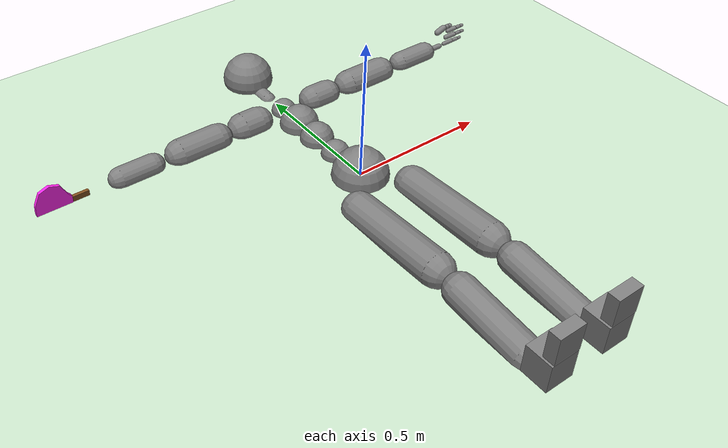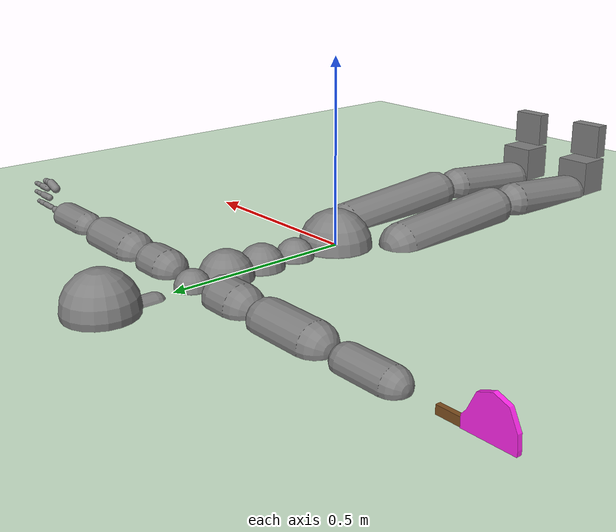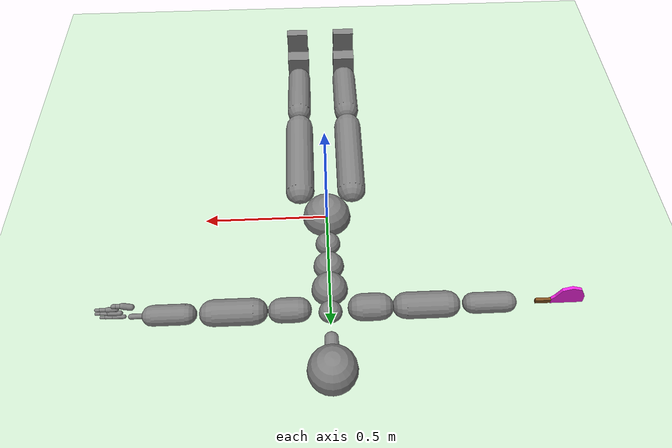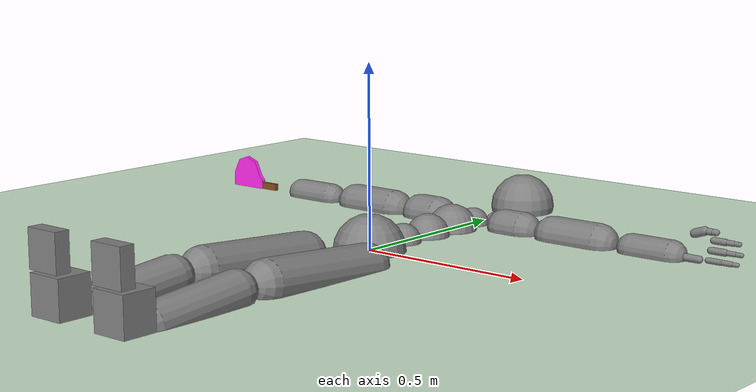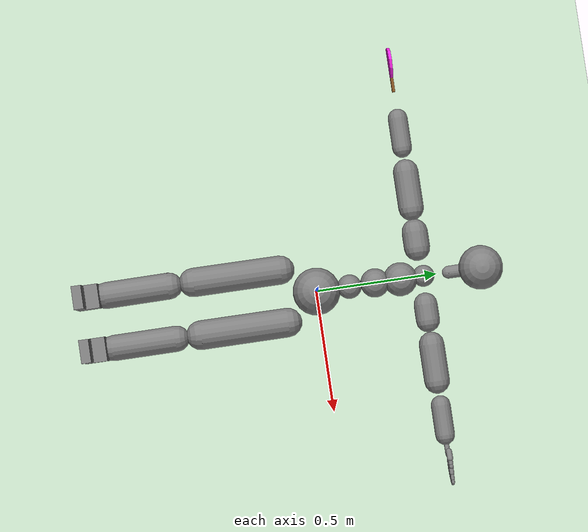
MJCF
<mujoco model="humanoid">
  <compiler coordinate="local"/>
  <statistic extent="2" center="0 0 1"/>
  <option timestep="0.00555"/>
  <default>
    <motor ctrlrange="-1 1" ctrllimited="true"/>
    <geom type="capsule" condim="1" friction="1.0 0.05 0.05" solimp=".9 .99 .003" solref=".015 1"/>
    <joint type="hinge" damping="0.1" stiffness="5" armature=".007" limited="true" solimplimit="0 .99 .01"/>
    <site size=".04" group="3"/>
    <default class="force-torque">
      <site type="box" size=".01 .01 .02" rgba="1 0 0 1"/>
    </default>
    <default class="touch">
      <site type="capsule" rgba="0 0 1 .3"/>
    </default>
  </default>
  <asset>
    <texture type="skybox" builtin="gradient" rgb1=".4 .5 .6" rgb2="0 0 0" width="100" height="100"/>
    <texture builtin="flat" height="1278" mark="cross" markrgb="1 1 1" name="texgeom" random="0.01" rgb1="0.8 0.6 0.4" rgb2="0.8 0.6 0.4" type="cube" width="127"/>
    <texture builtin="checker" height="100" name="texplane" rgb1="0 0 0" rgb2="0.8 0.8 0.8" type="2d" width="100"/>
    <material name="MatPlane" reflectance="0.5" shininess="1" specular="1" texrepeat="60 60" texture="texplane"/>
    <material name="geom" texture="texgeom" texuniform="true"/>
    <mesh name="R_Racket_Handle_Mesh" file="../obj/r_racket_handle.obj"/>
    <mesh name="R_Racket_Blade_Mesh" file="../obj/r_racket_blade.obj"/>
  </asset>
  <worldbody>
    <light cutoff="100" diffuse="1 1 1" dir="-0 0 -1.3" directional="true" exponent="1" pos="0 0 1.3" specular=".1 .1 .1"/>
    <geom conaffinity="1" condim="3" name="floor" pos="0 0 0" rgba="0.8 0.9 0.8 1" size="100 100 .2" type="plane" material="MatPlane"/>
    <body name="Pelvis" pos="0 0 0">
      <freejoint name="Pelvis"/>
      <geom type="sphere" contype="1" conaffinity="1" density="4629.6296296296305" size="0.0985" pos="0.0000 0.0000 0.0000"/>
      <body name="L_Hip" pos="0.109716 -0.0365719 0">
        <joint name="L_Hip_x" type="hinge" pos="0 0 0" axis="1 0 0" stiffness="500" damping="50" armature="0.02" range="-180.0000 180.0000"/>
        <joint name="L_Hip_y" type="hinge" pos="0 0 0" axis="0 1 0" stiffness="500" damping="50" armature="0.02" range="-180.0000 180.0000"/>
        <joint name="L_Hip_z" type="hinge" pos="0 0 0" axis="0 0 1" stiffness="500" damping="50" armature="0.02" range="-180.0000 180.0000"/>
        <geom type="capsule" contype="1" conaffinity="1" density="2040.816327" fromto="0 -0.1 0 -0 -0.461208 0.0256003" size="0.0605"/>
        <body name="L_Knee" pos="-0 -0.461208 0.0256003">
          <joint name="L_Knee_x" type="hinge" pos="0 0 0" axis="1 0 0" stiffness="500" damping="50" armature="0.02" range="-180.0000 180.0000"/>
          <joint name="L_Knee_y" type="hinge" pos="0 0 0" axis="0 1 0" stiffness="500" damping="50" armature="0.02" range="-180.0000 180.0000"/>
          <joint name="L_Knee_z" type="hinge" pos="0 0 0" axis="0 0 1" stiffness="500" damping="50" armature="0.02" range="-180.0000 180.0000"/>
          <geom type="capsule" contype="1" conaffinity="1" density="1234.567901" fromto="0 -0.1 0 -0 -0.364385 -0.0256003" size="0.0533"/>
          <body name="L_Ankle" pos="-0 -0.364385 -0.0256003">
            <joint name="L_Ankle_x" type="hinge" pos="0 0 0" axis="1 0 0" stiffness="400" damping="40" armature="0.02" range="-180.0000 180.0000"/>
            <joint name="L_Ankle_y" type="hinge" pos="0 0 0" axis="0 1 0" stiffness="400" damping="40" armature="0.02" range="-180.0000 180.0000"/>
            <joint name="L_Ankle_z" type="hinge" pos="0 0 0" axis="0 0 1" stiffness="400" damping="40" armature="0.02" range="-180.0000 180.0000"/>
            <geom density="" type="box" pos="0. -0.07 0.0142" size="0.0498 0.0464 0.0857" quat="1.0000 0.0000 0.0000 0.0000"/>
            <body name="L_Toe" pos="-0 -0.0986496 0.156582">
              <joint name="L_Toe_x" type="hinge" pos="0 0 0" axis="1 0 0" stiffness="200" damping="20" armature="0.02" range="-180.0000 180.0000"/>
              <joint name="L_Toe_y" type="hinge" pos="0 0 0" axis="0 1 0" stiffness="200" damping="20" armature="0.02" range="-180.0000 180.0000"/>
              <joint name="L_Toe_z" type="hinge" pos="0 0 0" axis="0 0 1" stiffness="200" damping="20" armature="0.02" range="-180.0000 180.0000"/>
              <geom density="" type="box" pos="0. 0. 0." size="0.0478 0.02 0.0495" quat="1.0000 0.0000 0.0000 0.0000"/>
            </body>
          </body>
        </body>
      </body>
      <body name="R_Hip" pos="-0.109716 -0.0365719 0">
        <joint name="R_Hip_x" type="hinge" pos="0 0 0" axis="1 0 0" stiffness="500" damping="50" armature="0.02" range="-180.0000 180.0000"/>
        <joint name="R_Hip_y" type="hinge" pos="0 0 0" axis="0 1 0" stiffness="500" damping="50" armature="0.02" range="-180.0000 180.0000"/>
        <joint name="R_Hip_z" type="hinge" pos="0 0 0" axis="0 0 1" stiffness="500" damping="50" armature="0.02" range="-180.0000 180.0000"/>
        <geom type="capsule" contype="1" conaffinity="1" density="2040.816327" fromto="0 -0.1 0 -0 -0.461208 0.0256003" size="0.0598"/>
        <body name="R_Knee" pos="-0 -0.461208 0.0256003">
          <joint name="R_Knee_x" type="hinge" pos="0 0 0" axis="1 0 0" stiffness="500" damping="50" armature="0.02" range="-180.0000 180.0000"/>
          <joint name="R_Knee_y" type="hinge" pos="0 0 0" axis="0 1 0" stiffness="500" damping="50" armature="0.02" range="-180.0000 180.0000"/>
          <joint name="R_Knee_z" type="hinge" pos="0 0 0" axis="0 0 1" stiffness="500" damping="50" armature="0.02" range="-180.0000 180.0000"/>
          <geom type="capsule" contype="1" conaffinity="1" density="1234.567901" fromto=" 0 -0.1 0 -0 -0.364385 -0.0256003" size="0.0551"/>
          <body name="R_Ankle" pos="-0 -0.364385 -0.0256003">
            <joint name="R_Ankle_x" type="hinge" pos="0 0 0" axis="1 0 0" stiffness="400" damping="40" armature="0.02" range="-180.0000 180.0000"/>
            <joint name="R_Ankle_y" type="hinge" pos="0 0 0" axis="0 1 0" stiffness="400" damping="40" armature="0.02" range="-180.0000 180.0000"/>
            <joint name="R_Ankle_z" type="hinge" pos="0 0 0" axis="0 0 1" stiffness="400" damping="40" armature="0.02" range="-180.0000 180.0000"/>
            <geom density="" type="box" pos="0. -0.07 0.0142" size="0.0498 0.0464 0.0857" quat="1.0000 0.0000 0.0000 0.0000"/>
            <body name="R_Toe" pos="-0 -0.0986496 0.156582">
              <joint name="R_Toe_x" type="hinge" pos="0 0 0" axis="1 0 0" stiffness="200" damping="20" armature="0.02" range="-180.0000 180.0000"/>
              <joint name="R_Toe_y" type="hinge" pos="0 0 0" axis="0 1 0" stiffness="200" damping="20" armature="0.02" range="-180.0000 180.0000"/>
              <joint name="R_Toe_z" type="hinge" pos="0 0 0" axis="0 0 1" stiffness="200" damping="20" armature="0.02" range="-180.0000 180.0000"/>
              <geom density="" type="box" pos="0. 0. 0." size="0.0478 0.02 0.0495" quat="1.0000 0.0000 0.0000 0.0000"/>
            </body>
          </body>
        </body>
      </body>
      <body name="Torso" pos="-0 0.0877726 -0.0279775">
        <joint name="Torso_x" type="hinge" pos="0 0 0" axis="1 0 0" stiffness="1000" damping="100" armature="0.02" range="-180.0000 180.0000"/>
        <joint name="Torso_y" type="hinge" pos="0 0 0" axis="0 1 0" stiffness="1000" damping="100" armature="0.02" range="-180.0000 180.0000"/>
        <joint name="Torso_z" type="hinge" pos="0 0 0" axis="0 0 1" stiffness="1000" damping="100" armature="0.02" range="-180.0000 180.0000"/>
        <geom type="sphere" contype="1" conaffinity="1" density="1000" size="0.05011" pos="0.0000 0.050000 0.0279775"/>
        <body name="Spine" pos="-0 0.106124 0">
          <joint name="Spine_x" type="hinge" pos="0 0 0" axis="1 0 0" stiffness="1000" damping="100" armature="0.02" range="-180.0000 180.0000"/>
          <joint name="Spine_y" type="hinge" pos="0 0 0" axis="0 1 0" stiffness="1000" damping="100" armature="0.02" range="-180.0000 180.0000"/>
          <joint name="Spine_z" type="hinge" pos="0 0 0" axis="0 0 1" stiffness="1000" damping="100" armature="0.02" range="-180.0000 180.0000"/>
          <geom type="sphere" contype="1" conaffinity="1" density="1000" size="0.06011" pos="0.0000 0.050000 0.0279775"/>
          <body name="Spine2" pos="-0 0.106124 0">
	    <joint name="Spine2_x" type="hinge" pos="0 0 0" axis="1 0 0" stiffness="1000" damping="100" armature="0.02" range="-180.0000 180.0000"/>
	    <joint name="Spine2_y" type="hinge" pos="0 0 0" axis="0 1 0" stiffness="1000" damping="100" armature="0.02" range="-180.0000 180.0000"/>
	    <joint name="Spine2_z" type="hinge" pos="0 0 0" axis="0 0 1" stiffness="1000" damping="100" armature="0.02" range="-180.0000 180.0000"/>
	    <geom type="sphere" contype="1" conaffinity="1" density="1000" size="0.07011" pos="0.0000 0.050000 0.0279775"/>
		  <body name="Chest" pos="-0 0.166951 0">
		    <joint name="Chest_x" type="hinge" pos="0 0 0" axis="1 0 0" stiffness="1000" damping="100" armature="0.02" range="-180.0000 180.0000"/>
		    <joint name="Chest_y" type="hinge" pos="0 0 0" axis="0 1 0" stiffness="1000" damping="100" armature="0.02" range="-180.0000 180.0000"/>
		    <joint name="Chest_z" type="hinge" pos="0 0 0" axis="0 0 1" stiffness="1000" damping="100" armature="0.02" range="-180.0000 180.0000"/>
		    <geom type="sphere" contype="1" conaffinity="1" density="1000" size="0.045" pos="0.0000 -0.020000 0.0279775"/>
		    <body name="Neck" pos="-0 0.084247 0.0146288">
		      <joint name="Neck_x" type="hinge" pos="0 0 0" axis="1 0 0" stiffness="100" damping="10" armature="0.02" range="-180.0000 180.0000"/>
		      <joint name="Neck_y" type="hinge" pos="0 0 0" axis="0 1 0" stiffness="100" damping="10" armature="0.02" range="-180.0000 180.0000"/>
		      <joint name="Neck_z" type="hinge" pos="0 0 0" axis="0 0 1" stiffness="100" damping="10" armature="0.02" range="-180.0000 180.0000"/>
		      <geom type="capsule" contype="1" conaffinity="1" density="1000" fromto="0 0 0 -0 0.0509716 0" size="0.0285"/>
		      <body name="Head" pos="-0 0.109716 0">
		        <joint name="Head_x" type="hinge" pos="0 0 0" axis="1 0 0" stiffness="100" damping="10" armature="0.02" range="-180.0000 180.0000"/>
		        <joint name="Head_y" type="hinge" pos="0 0 0" axis="0 1 0" stiffness="100" damping="10" armature="0.02" range="-180.0000 180.0000"/>
		        <joint name="Head_z" type="hinge" pos="0 0 0" axis="0 0 1" stiffness="100" damping="10" armature="0.02" range="-180.0000 180.0000"/>
		        <geom type="sphere" contype="1" conaffinity="1" density="1000" size="0.0920" pos="0.0000 0.024000 0.0279775"/>
		      </body>
		    </body>
		    <body name="L_Thorax" pos="0.018286 -0.0295385 0.0365719">
		      <joint name="L_Thorax_x" type="hinge" pos="0 0 0" axis="1 0 0" stiffness="400" damping="40" armature="0.02" range="-180.0000 180.0000"/>
		      <joint name="L_Thorax_y" type="hinge" pos="0 0 0" axis="0 1 0" stiffness="400" damping="40" armature="0.02" range="-180.0000 180.0000"/>
		      <joint name="L_Thorax_z" type="hinge" pos="0 0 0" axis="0 0 1" stiffness="400" damping="40" armature="0.02" range="-180.0000 180.0000"/>
		      <geom type="capsule" contype="1" conaffinity="1" density="1000" fromto="0.1 0 0 0.166499 0 0" size="0.0488"/>
		      <body name="L_Shoulder" pos="0.166499 0 0">
		        <joint name="L_Shoulder_x" type="hinge" pos="0 0 0" axis="1 0 0" stiffness="400" damping="40" armature="0.02" range="-180.0000 180.0000"/>
		        <joint name="L_Shoulder_y" type="hinge" pos="0 0 0" axis="0 1 0" stiffness="400" damping="40" armature="0.02" range="-180.0000 180.0000"/>
		        <joint name="L_Shoulder_z" type="hinge" pos="0 0 0" axis="0 0 1" stiffness="400" damping="40" armature="0.02" range="-180.0000 180.0000"/>
		        <geom type="capsule" contype="1" conaffinity="1" density="1000" fromto="0.1 0 0 0.252505 0 0" size="0.0522"/>
		        <body name="L_Elbow" pos="0.252505 0 0">
		          <joint name="L_Elbow_x" type="hinge" pos="0 0 0" axis="1 0 0" stiffness="300" damping="30" armature="0.02" range="-180.0000 180.0000"/>
		          <joint name="L_Elbow_y" type="hinge" pos="0 0 0" axis="0 1 0" stiffness="300" damping="30" armature="0.02" range="-180.0000 180.0000"/>
		          <joint name="L_Elbow_z" type="hinge" pos="0 0 0" axis="0 0 1" stiffness="300" damping="30" armature="0.02" range="-180.0000 180.0000"/>
		          <geom type="capsule" contype="1" conaffinity="1" density="1000" fromto="0.1 0 0 0.223894 0 0" size="0.0401"/>
		          <body name="L_Wrist" pos="0.243894 0 0">
		            <joint name="L_Wrist_x" type="hinge" pos="0 0 0" axis="1 0 0" stiffness="100" damping="10" armature="0.02" range="-180.0000 180.0000"/>
		            <joint name="L_Wrist_y" type="hinge" pos="0 0 0" axis="0 1 0" stiffness="100" damping="10" armature="0.02" range="-180.0000 180.0000"/>
		            <joint name="L_Wrist_z" type="hinge" pos="0 0 0" axis="0 0 1" stiffness="100" damping="10" armature="0.02" range="-180.0000 180.0000"/>
		            <geom type="capsule" contype="1" conaffinity="1" density="1000" fromto="0 0 0 0.06 0 0" size="0.0103"/>
		            <body name="L_Index1" pos="0.100362 0 0.0561204">
		              <joint name="L_Index1_x" type="hinge" pos="0 0 0" axis="1 0 0" stiffness="100" damping="10" armature="0.02" range="-180.0000 180.0000"/>
		              <joint name="L_Index1_y" type="hinge" pos="0 0 0" axis="0 1 0" stiffness="100" damping="10" armature="0.02" range="-180.0000 180.0000"/>
		              <joint name="L_Index1_z" type="hinge" pos="0 0 0" axis="0 0 1" stiffness="100" damping="10" armature="0.02" range="-180.0000 180.0000"/>
		              <geom type="capsule" contype="1" conaffinity="1" density="1000" fromto="0 0 0 0.0343 0 0" size="0.0092"/>
		              <body name="L_Index2" pos="0.0343 0 0">
		                <joint name="L_Index2_x" type="hinge" pos="0 0 0" axis="1 0 0" stiffness="100" damping="10" armature="0.02" range="-180.0000 180.0000"/>
		                <joint name="L_Index2_y" type="hinge" pos="0 0 0" axis="0 1 0" stiffness="100" damping="10" armature="0.02" range="-180.0000 180.0000"/>
		                <joint name="L_Index2_z" type="hinge" pos="0 0 0" axis="0 0 1" stiffness="100" damping="10" armature="0.02" range="-180.0000 180.0000"/>
		                <geom type="capsule" contype="1" conaffinity="1" density="1000" fromto="0 0 0 0.02401 0 0" size="0.0075"/>
		                <body name="L_Index3" pos="0.02401 0 0">
		                  <joint name="L_Index3_x" type="hinge" pos="0 0 0" axis="1 0 0" stiffness="100" damping="10" armature="0.02" range="-180.0000 180.0000"/>
		                  <joint name="L_Index3_y" type="hinge" pos="0 0 0" axis="0 1 0" stiffness="100" damping="10" armature="0.02" range="-180.0000 180.0000"/>
		                  <joint name="L_Index3_z" type="hinge" pos="0 0 0" axis="0 0 1" stiffness="100" damping="10" armature="0.02" range="-180.0000 180.0000"/>
		                  <geom type="capsule" contype="1" conaffinity="1" density="1000" fromto="0 0 0 0.0149205 0 0" size="0.0068"/>
		                </body>
		              </body>
		            </body>
		            <body name="L_Middle1" pos="0.0927298 0 0.029047">
		              <joint name="L_Middle1_x" type="hinge" pos="0 0 0" axis="1 0 0" stiffness="100" damping="10" armature="0.02" range="-180.0000 180.0000"/>
		              <joint name="L_Middle1_y" type="hinge" pos="0 0 0" axis="0 1 0" stiffness="100" damping="10" armature="0.02" range="-180.0000 180.0000"/>
		              <joint name="L_Middle1_z" type="hinge" pos="0 0 0" axis="0 0 1" stiffness="100" damping="10" armature="0.02" range="-180.0000 180.0000"/>
		              <geom type="capsule" contype="1" conaffinity="1" density="1000" fromto="0 0 0 0.04116 0 0" size="0.0094"/>
		              <body name="L_Middle2" pos="0.04116 0 0">
		                <joint name="L_Middle2_x" type="hinge" pos="0 0 0" axis="1 0 0" stiffness="100" damping="10" armature="0.02" range="-180.0000 180.0000"/>
		                <joint name="L_Middle2_y" type="hinge" pos="0 0 0" axis="0 1 0" stiffness="100" damping="10" armature="0.02" range="-180.0000 180.0000"/>
		                <joint name="L_Middle2_z" type="hinge" pos="0 0 0" axis="0 0 1" stiffness="100" damping="10" armature="0.02" range="-180.0000 180.0000"/>
		                <geom type="capsule" contype="1" conaffinity="1" density="1000" fromto="0 0 0 0.028812 0 0" size="0.007"/>
		                <body name="L_Middle3" pos="0.028812 0 0">
		                  <joint name="L_Middle3_x" type="hinge" pos="0 0 0" axis="1 0 0" stiffness="100" damping="10" armature="0.02" range="-180.0000 180.0000"/>
		                  <joint name="L_Middle3_y" type="hinge" pos="0 0 0" axis="0 1 0" stiffness="100" damping="10" armature="0.02" range="-180.0000 180.0000"/>
		                  <joint name="L_Middle3_z" type="hinge" pos="0 0 0" axis="0 0 1" stiffness="100" damping="10" armature="0.02" range="-180.0000 180.0000"/>
		                  <geom type="capsule" contype="1" conaffinity="1" density="1000" fromto="0 0 0 0.0179046 0 0" size="0.0063"/>
		                </body>
		              </body>
		            </body>
		            <body name="L_Pinky1" pos="0.0774654 0 -0.0250997">
		              <joint name="L_Pinky1_x" type="hinge" pos="0 0 0" axis="1 0 0" stiffness="100" damping="10" armature="0.02" range="-180.0000 180.0000"/>
		              <joint name="L_Pinky1_y" type="hinge" pos="0 0 0" axis="0 1 0" stiffness="100" damping="10" armature="0.02" range="-180.0000 180.0000"/>
		              <joint name="L_Pinky1_z" type="hinge" pos="0 0 0" axis="0 0 1" stiffness="100" damping="10" armature="0.02" range="-180.0000 180.0000"/>
		              <geom type="capsule" contype="1" conaffinity="1" density="1000" fromto="0 0 0 0.0267662 0 0" size="0.007"/>
		              <body name="L_Pinky2" pos="0.0267662 0 0">
		                <joint name="L_Pinky2_x" type="hinge" pos="0 0 0" axis="1 0 0" stiffness="100" damping="10" armature="0.02" range="-180.0000 180.0000"/>
		                <joint name="L_Pinky2_y" type="hinge" pos="0 0 0" axis="0 1 0" stiffness="100" damping="10" armature="0.02" range="-180.0000 180.0000"/>
		                <joint name="L_Pinky2_z" type="hinge" pos="0 0 0" axis="0 0 1" stiffness="100" damping="10" armature="0.02" range="-180.0000 180.0000"/>
		                <geom type="capsule" contype="1" conaffinity="1" density="1000" fromto="0 0 0 0.0187364 0 0" size="0.0063"/>
		                <body name="L_Pinky3" pos="0.0187364 0 0">
		                  <joint name="L_Pinky3_x" type="hinge" pos="0 0 0" axis="1 0 0" stiffness="100" damping="10" armature="0.02" range="-180.0000 180.0000"/>
		                  <joint name="L_Pinky3_y" type="hinge" pos="0 0 0" axis="0 1 0" stiffness="100" damping="10" armature="0.02" range="-180.0000 180.0000"/>
		                  <joint name="L_Pinky3_z" type="hinge" pos="0 0 0" axis="0 0 1" stiffness="100" damping="10" armature="0.02" range="-180.0000 180.0000"/>
		                  <geom type="capsule" contype="1" conaffinity="1" density="1000" fromto="0 0 0 0.0116433 0 0" size="0.0051"/>
		                </body>
		              </body>
		            </body>
		            <body name="L_Ring1" pos="0.0850976 0 0.00197363">
		              <joint name="L_Ring1_x" type="hinge" pos="0 0 0" axis="1 0 0" stiffness="100" damping="10" armature="0.02" range="-180.0000 180.0000"/>
		              <joint name="L_Ring1_y" type="hinge" pos="0 0 0" axis="0 1 0" stiffness="100" damping="10" armature="0.02" range="-180.0000 180.0000"/>
		              <joint name="L_Ring1_z" type="hinge" pos="0 0 0" axis="0 0 1" stiffness="100" damping="10" armature="0.02" range="-180.0000 180.0000"/>
		              <geom type="capsule" contype="1" conaffinity="1" density="1000" fromto="0 0 0 0.039445 0 0" size="0.0079"/>
		              <body name="L_Ring2" pos="0.039445 0 0">
		                <joint name="L_Ring2_x" type="hinge" pos="0 0 0" axis="1 0 0" stiffness="100" damping="10" armature="0.02" range="-180.0000 180.0000"/>
		                <joint name="L_Ring2_y" type="hinge" pos="0 0 0" axis="0 1 0" stiffness="100" damping="10" armature="0.02" range="-180.0000 180.0000"/>
		                <joint name="L_Ring2_z" type="hinge" pos="0 0 0" axis="0 0 1" stiffness="100" damping="10" armature="0.02" range="-180.0000 180.0000"/>
		                <geom type="capsule" contype="1" conaffinity="1" density="1000" fromto="0 0 0 0.0276115 0 0" size="0.0072"/>
		                <body name="L_Ring3" pos="0.0276115 0 0">
		                  <joint name="L_Ring3_x" type="hinge" pos="0 0 0" axis="1 0 0" stiffness="100" damping="10" armature="0.02" range="-180.0000 180.0000"/>
		                  <joint name="L_Ring3_y" type="hinge" pos="0 0 0" axis="0 1 0" stiffness="100" damping="10" armature="0.02" range="-180.0000 180.0000"/>
		                  <joint name="L_Ring3_z" type="hinge" pos="0 0 0" axis="0 0 1" stiffness="100" damping="10" armature="0.02" range="-180.0000 180.0000"/>
		                  <geom type="capsule" contype="1" conaffinity="1" density="1000" fromto="0 0 0 0.0171586 0 0" size="0.006"/>
		                </body>
		              </body>
		            </body>
		            <body name="L_Thumb1" pos="0.0444569 0 0.0673445">
		              <joint name="L_Thumb1_x" type="hinge" pos="0 0 0" axis="1 0 0" stiffness="100" damping="10" armature="0.02" range="-180.0000 180.0000"/>
		              <joint name="L_Thumb1_y" type="hinge" pos="0 0 0" axis="0 1 0" stiffness="100" damping="10" armature="0.02" range="-180.0000 180.0000"/>
		              <joint name="L_Thumb1_z" type="hinge" pos="0 0 0" axis="0 0 1" stiffness="100" damping="10" armature="0.02" range="-180.0000 180.0000"/>
		              <geom type="capsule" contype="1" conaffinity="1" density="1000" fromto="0 0 0 0.0294 0 0.01" size="0.0122"/>
		              <body name="L_Thumb2" pos="0.0294 0 0.01">
		                <joint name="L_Thumb2_x" type="hinge" pos="0 0 0" axis="1 0 0" stiffness="100" damping="10" armature="0.02" range="-180.0000 180.0000"/>
		                <joint name="L_Thumb2_y" type="hinge" pos="0 0 0" axis="0 1 0" stiffness="100" damping="10" armature="0.02" range="-180.0000 180.0000"/>
		                <joint name="L_Thumb2_z" type="hinge" pos="0 0 0" axis="0 0 1" stiffness="100" damping="10" armature="0.02" range="-180.0000 180.0000"/>
		                <geom type="capsule" contype="1" conaffinity="1" density="1000" fromto="0 0 0 0.02058 0 0" size="0.0093"/>
		                <body name="L_Thumb3" pos="0.02058 0 0">
		                  <joint name="L_Thumb3_x" type="hinge" pos="0 0 0" axis="1 0 0" stiffness="100" damping="10" armature="0.02" range="-180.0000 180.0000"/>
		                  <joint name="L_Thumb3_y" type="hinge" pos="0 0 0" axis="0 1 0" stiffness="100" damping="10" armature="0.02" range="-180.0000 180.0000"/>
		                  <joint name="L_Thumb3_z" type="hinge" pos="0 0 0" axis="0 0 1" stiffness="100" damping="10" armature="0.02" range="-180.0000 180.0000"/>
		                  <geom type="capsule" contype="1" conaffinity="1" density="1000" fromto="0 0 0 0.012789 0 0" size="0.0087"/>
		                </body>
		              </body>
		            </body>
		          </body>
		        </body>
		      </body>
		    </body>
		    <body name="R_Thorax" pos="-0.018286 -0.0295385 0.0365719">
		      <joint name="R_Thorax_x" type="hinge" pos="0 0 0" axis="1 0 0" stiffness="400" damping="40" armature="0.02" range="-180.0000 180.0000"/>
		      <joint name="R_Thorax_y" type="hinge" pos="0 0 0" axis="0 1 0" stiffness="400" damping="40" armature="0.02" range="-180.0000 180.0000"/>
		      <joint name="R_Thorax_z" type="hinge" pos="0 0 0" axis="0 0 1" stiffness="400" damping="40" armature="0.02" range="-180.0000 180.0000"/>
		      <geom type="capsule" contype="1" conaffinity="1" density="1000" fromto="-0.1 0 0 -0.166499 0 0" size="0.0536"/>
		      <body name="R_Shoulder" pos="-0.166499 0 0">
		        <joint name="R_Shoulder_x" type="hinge" pos="0 0 0" axis="1 0 0" stiffness="400" damping="40" armature="0.02" range="-180.0000 180.0000"/>
		        <joint name="R_Shoulder_y" type="hinge" pos="0 0 0" axis="0 1 0" stiffness="400" damping="40" armature="0.02" range="-180.0000 180.0000"/>
		        <joint name="R_Shoulder_z" type="hinge" pos="0 0 0" axis="0 0 1" stiffness="400" damping="40" armature="0.02" range="-180.0000 180.0000"/>
		        <geom type="capsule" contype="1" conaffinity="1" density="1000" fromto="-0.1 0 0 -0.252505 0 0" size="0.0521"/>
		        <body name="R_Elbow" pos="-0.252505 0 0">
		          <joint name="R_Elbow_x" type="hinge" pos="0 0 0" axis="1 0 0" stiffness="300" damping="30" armature="0.02" range="-180.0000 180.0000"/>
		          <joint name="R_Elbow_y" type="hinge" pos="0 0 0" axis="0 1 0" stiffness="300" damping="30" armature="0.02" range="-180.0000 180.0000"/>
		          <joint name="R_Elbow_z" type="hinge" pos="0 0 0" axis="0 0 1" stiffness="300" damping="30" armature="0.02" range="-180.0000 180.0000"/>
		          <geom type="capsule" contype="1" conaffinity="1" density="1000" fromto="-0.1 0 0 -0.223894 0 0" size="0.0404"/>
		          <body name="R_Wrist" pos="-0.243894 0 0">
		            <joint name="R_Wrist_x" type="hinge" pos="0 0 0" axis="1 0 0" stiffness="100" damping="10" armature="0.02" range="-180.0000 180.0000"/>
		            <joint name="R_Wrist_y" type="hinge" pos="0 0 0" axis="0 1 0" stiffness="100" damping="10" armature="0.02" range="-180.0000 180.0000"/>
		            <joint name="R_Wrist_z" type="hinge" pos="0 0 0" axis="0 0 1" stiffness="100" damping="10" armature="0.02" range="-180.0000 180.0000"/>
		            <geom type="capsule" contype="0" conaffinity="0" density="1000" fromto="0 0 0 -0.06 0 0" size="0.01" rgba="0 0 0 0"/>
		            <geom name="R_Racket_Handle" type="mesh" mesh="R_Racket_Handle_Mesh" contype="1" conaffinity="1" density="8" pos="-0.072 0 0"
		                  quat="1 0 0 0" rgba="0.50 0.31 0.12 1"/>
		            <geom name="R_Racket_Blade" type="mesh" mesh="R_Racket_Blade_Mesh" contype="1" conaffinity="1" density="8" pos="-0.072 0 0"
		                  quat="1 0 0 0" rgba="1.0 0.15 0.92 1"/>
		            <body name="R_Index1" pos="-0.0953267 0 0.0454889">
		              <joint name="R_Index1_x" type="hinge" pos="0 0 0" axis="1 0 0" stiffness="100" damping="10" armature="0.02" range="-180.0000 180.0000"/>
		              <joint name="R_Index1_y" type="hinge" pos="0 0 0" axis="0 1 0" stiffness="100" damping="10" armature="0.02" range="-180.0000 180.0000"/>
		              <joint name="R_Index1_z" type="hinge" pos="0 0 0" axis="0 0 1" stiffness="100" damping="10" armature="0.02" range="-180.0000 180.0000"/>
		              <geom type="capsule" contype="0" conaffinity="0" density="1000" fromto="0 0 0 -0.0343 0 0" size="0.0092" rgba="0 0 0 0"/>
		              <body name="R_Index2" pos="-0.0343 0 0">
		                <joint name="R_Index2_x" type="hinge" pos="0 0 0" axis="1 0 0" stiffness="100" damping="10" armature="0.02" range="-180.0000 180.0000"/>
		                <joint name="R_Index2_y" type="hinge" pos="0 0 0" axis="0 1 0" stiffness="100" damping="10" armature="0.02" range="-180.0000 180.0000"/>
		                <joint name="R_Index2_z" type="hinge" pos="0 0 0" axis="0 0 1" stiffness="100" damping="10" armature="0.02" range="-180.0000 180.0000"/>
		                <geom type="capsule" contype="0" conaffinity="0" density="1000" fromto="0 0 0 -0.02401 0 0" size="0.0076" rgba="0 0 0 0"/>
		                <body name="R_Index3" pos="-0.02401 0 0">
		                  <joint name="R_Index3_x" type="hinge" pos="0 0 0" axis="1 0 0" stiffness="100" damping="10" armature="0.02" range="-180.0000 180.0000"/>
		                  <joint name="R_Index3_y" type="hinge" pos="0 0 0" axis="0 1 0" stiffness="100" damping="10" armature="0.02" range="-180.0000 180.0000"/>
		                  <joint name="R_Index3_z" type="hinge" pos="0 0 0" axis="0 0 1" stiffness="100" damping="10" armature="0.02" range="-180.0000 180.0000"/>
		                  <geom type="capsule" contype="0" conaffinity="0" density="1000" fromto="0 0 0 -0.0149205 0 0" size="0.0069" rgba="0 0 0 0"/>
		                </body>
		              </body>
		            </body>
		            <body name="R_Middle1" pos="-0.0891353 0 0.0223232">
		              <joint name="R_Middle1_x" type="hinge" pos="0 0 0" axis="1 0 0" stiffness="100" damping="10" armature="0.02" range="-180.0000 180.0000"/>
		              <joint name="R_Middle1_y" type="hinge" pos="0 0 0" axis="0 1 0" stiffness="100" damping="10" armature="0.02" range="-180.0000 180.0000"/>
		              <joint name="R_Middle1_z" type="hinge" pos="0 0 0" axis="0 0 1" stiffness="100" damping="10" armature="0.02" range="-180.0000 180.0000"/>
		              <geom type="capsule" contype="0" conaffinity="0" density="1000" fromto="0 0 0 -0.04116 0 0" size="0.0094" rgba="0 0 0 0"/>
		              <body name="R_Middle2" pos="-0.04116 0 0">
		                <joint name="R_Middle2_x" type="hinge" pos="0 0 0" axis="1 0 0" stiffness="100" damping="10" armature="0.02" range="-180.0000 180.0000"/>
		                <joint name="R_Middle2_y" type="hinge" pos="0 0 0" axis="0 1 0" stiffness="100" damping="10" armature="0.02" range="-180.0000 180.0000"/>
		                <joint name="R_Middle2_z" type="hinge" pos="0 0 0" axis="0 0 1" stiffness="100" damping="10" armature="0.02" range="-180.0000 180.0000"/>
		                <geom type="capsule" contype="0" conaffinity="0" density="1000" fromto="0 0 0 -0.028812 0 0" size="0.0071" rgba="0 0 0 0"/>
		                <body name="R_Middle3" pos="-0.028812 0 0">
		                  <joint name="R_Middle3_x" type="hinge" pos="0 0 0" axis="1 0 0" stiffness="100" damping="10" armature="0.02" range="-180.0000 180.0000"/>
		                  <joint name="R_Middle3_y" type="hinge" pos="0 0 0" axis="0 1 0" stiffness="100" damping="10" armature="0.02" range="-180.0000 180.0000"/>
		                  <joint name="R_Middle3_z" type="hinge" pos="0 0 0" axis="0 0 1" stiffness="100" damping="10" armature="0.02" range="-180.0000 180.0000"/>
		                  <geom type="capsule" contype="0" conaffinity="0" density="1000" fromto="0 0 0 -0.0179046 0 0" size="0.0064" rgba="0 0 0 0"/>
		                </body>
		              </body>
		            </body>
		            <body name="R_Pinky1" pos="-0.0767525 0 -0.0240082">
		              <joint name="R_Pinky1_x" type="hinge" pos="0 0 0" axis="1 0 0" stiffness="100" damping="10" armature="0.02" range="-180.0000 180.0000"/>
		              <joint name="R_Pinky1_y" type="hinge" pos="0 0 0" axis="0 1 0" stiffness="100" damping="10" armature="0.02" range="-180.0000 180.0000"/>
		              <joint name="R_Pinky1_z" type="hinge" pos="0 0 0" axis="0 0 1" stiffness="100" damping="10" armature="0.02" range="-180.0000 180.0000"/>
		              <geom type="capsule" contype="0" conaffinity="0" density="1000" fromto="0 0 0 -0.0267662 0 0" size="0.007" rgba="0 0 0 0"/>
		              <body name="R_Pinky2" pos="-0.0267662 0 0">
		                <joint name="R_Pinky2_x" type="hinge" pos="0 0 0" axis="1 0 0" stiffness="100" damping="10" armature="0.02" range="-180.0000 180.0000"/>
		                <joint name="R_Pinky2_y" type="hinge" pos="0 0 0" axis="0 1 0" stiffness="100" damping="10" armature="0.02" range="-180.0000 180.0000"/>
		                <joint name="R_Pinky2_z" type="hinge" pos="0 0 0" axis="0 0 1" stiffness="100" damping="10" armature="0.02" range="-180.0000 180.0000"/>
		                <geom type="capsule" contype="0" conaffinity="0" density="1000" fromto="0 0 0 -0.0187364 0 0" size="0.0063" rgba="0 0 0 0"/>
		                <body name="R_Pinky3" pos="-0.0187364 0 0">
		                  <joint name="R_Pinky3_x" type="hinge" pos="0 0 0" axis="1 0 0" stiffness="100" damping="10" armature="0.02" range="-180.0000 180.0000"/>
		                  <joint name="R_Pinky3_y" type="hinge" pos="0 0 0" axis="0 1 0" stiffness="100" damping="10" armature="0.02" range="-180.0000 180.0000"/>
		                  <joint name="R_Pinky3_z" type="hinge" pos="0 0 0" axis="0 0 1" stiffness="100" damping="10" armature="0.02" range="-180.0000 180.0000"/>
		                  <geom type="capsule" contype="0" conaffinity="0" density="1000" fromto="0 0 0 -0.0116433 0 0" size="0.0052" rgba="0 0 0 0"/>
		                </body>
		              </body>
		            </body>
		            <body name="R_Ring1" pos="-0.0829439 0 -0.000842496">
		              <joint name="R_Ring1_x" type="hinge" pos="0 0 0" axis="1 0 0" stiffness="100" damping="10" armature="0.02" range="-180.0000 180.0000"/>
		              <joint name="R_Ring1_y" type="hinge" pos="0 0 0" axis="0 1 0" stiffness="100" damping="10" armature="0.02" range="-180.0000 180.0000"/>
		              <joint name="R_Ring1_z" type="hinge" pos="0 0 0" axis="0 0 1" stiffness="100" damping="10" armature="0.02" range="-180.0000 180.0000"/>
		              <geom type="capsule" contype="0" conaffinity="0" density="1000" fromto="0 0 0 -0.039445 0 0" size="0.0079" rgba="0 0 0 0"/>
		              <body name="R_Ring2" pos="-0.039445 0 0">
		                <joint name="R_Ring2_x" type="hinge" pos="0 0 0" axis="1 0 0" stiffness="100" damping="10" armature="0.02" range="-180.0000 180.0000"/>
		                <joint name="R_Ring2_y" type="hinge" pos="0 0 0" axis="0 1 0" stiffness="100" damping="10" armature="0.02" range="-180.0000 180.0000"/>
		                <joint name="R_Ring2_z" type="hinge" pos="0 0 0" axis="0 0 1" stiffness="100" damping="10" armature="0.02" range="-180.0000 180.0000"/>
		                <geom type="capsule" contype="0" conaffinity="0" density="1000" fromto="0 0 0 -0.0276115 0 0" size="0.0072" rgba="0 0 0 0"/>
		                <body name="R_Ring3" pos="-0.0276115 0 0">
		                  <joint name="R_Ring3_x" type="hinge" pos="0 0 0" axis="1 0 0" stiffness="100" damping="10" armature="0.02" range="-180.0000 180.0000"/>
		                  <joint name="R_Ring3_y" type="hinge" pos="0 0 0" axis="0 1 0" stiffness="100" damping="10" armature="0.02" range="-180.0000 180.0000"/>
		                  <joint name="R_Ring3_z" type="hinge" pos="0 0 0" axis="0 0 1" stiffness="100" damping="10" armature="0.02" range="-180.0000 180.0000"/>
		                  <geom type="capsule" contype="0" conaffinity="0" density="1000" fromto="0 0 0 -0.0171586 0 0" size="0.006" rgba="0 0 0 0"/>
		                </body>
		              </body>
		            </body>
		            <body name="R_Thumb1" pos="-0.0430198 0 0.0545867">
		              <joint name="R_Thumb1_x" type="hinge" pos="0 0 0" axis="1 0 0" stiffness="100" damping="10" armature="0.02" range="-180.0000 180.0000"/>
		              <joint name="R_Thumb1_y" type="hinge" pos="0 0 0" axis="0 1 0" stiffness="100" damping="10" armature="0.02" range="-180.0000 180.0000"/>
		              <joint name="R_Thumb1_z" type="hinge" pos="0 0 0" axis="0 0 1" stiffness="100" damping="10" armature="0.02" range="-180.0000 180.0000"/>
		              <geom type="capsule" contype="0" conaffinity="0" density="1000" fromto="0 0 0 -0.0294 0 0.01" size="0.0122" rgba="0 0 0 0"/>
		              <body name="R_Thumb2" pos="-0.0294 0 0.01">
		                <joint name="R_Thumb2_x" type="hinge" pos="0 0 0" axis="1 0 0" stiffness="100" damping="10" armature="0.02" range="-180.0000 180.0000"/>
		                <joint name="R_Thumb2_y" type="hinge" pos="0 0 0" axis="0 1 0" stiffness="100" damping="10" armature="0.02" range="-180.0000 180.0000"/>
		                <joint name="R_Thumb2_z" type="hinge" pos="0 0 0" axis="0 0 1" stiffness="100" damping="10" armature="0.02" range="-180.0000 180.0000"/>
		                <geom type="capsule" contype="0" conaffinity="0" density="1000" fromto="0 0 0 -0.02058 0 0" size="0.0093" rgba="0 0 0 0"/>
		                <body name="R_Thumb3" pos="-0.02058 0 0">
		                  <joint name="R_Thumb3_x" type="hinge" pos="0 0 0" axis="1 0 0" stiffness="100" damping="10" armature="0.02" range="-180.0000 180.0000"/>
		                  <joint name="R_Thumb3_y" type="hinge" pos="0 0 0" axis="0 1 0" stiffness="100" damping="10" armature="0.02" range="-180.0000 180.0000"/>
		                  <joint name="R_Thumb3_z" type="hinge" pos="0 0 0" axis="0 0 1" stiffness="100" damping="10" armature="0.02" range="-180.0000 180.0000"/>
		                  <geom type="capsule" contype="0" conaffinity="0" density="1000" fromto="0 0 0 -0.012789 0 0" size="0.009" rgba="0 0 0 0"/>
		                </body>
		              </body>
		            </body>
		          </body>
		        </body>
		      </body>
		    </body>
		  </body>
          </body>
        </body>
      </body>
    </body>
  </worldbody>
  <actuator>
    <motor name="L_Hip_x" joint="L_Hip_x" gear="500"/>
    <motor name="L_Hip_y" joint="L_Hip_y" gear="500"/>
    <motor name="L_Hip_z" joint="L_Hip_z" gear="500"/>
    <motor name="L_Knee_x" joint="L_Knee_x" gear="500"/>
    <motor name="L_Knee_y" joint="L_Knee_y" gear="500"/>
    <motor name="L_Knee_z" joint="L_Knee_z" gear="500"/>
    <motor name="L_Ankle_x" joint="L_Ankle_x" gear="500"/>
    <motor name="L_Ankle_y" joint="L_Ankle_y" gear="500"/>
    <motor name="L_Ankle_z" joint="L_Ankle_z" gear="500"/>
    <motor name="L_Toe_x" joint="L_Toe_x" gear="500"/>
    <motor name="L_Toe_y" joint="L_Toe_y" gear="500"/>
    <motor name="L_Toe_z" joint="L_Toe_z" gear="500"/>
    <motor name="R_Hip_x" joint="R_Hip_x" gear="500"/>
    <motor name="R_Hip_y" joint="R_Hip_y" gear="500"/>
    <motor name="R_Hip_z" joint="R_Hip_z" gear="500"/>
    <motor name="R_Knee_x" joint="R_Knee_x" gear="500"/>
    <motor name="R_Knee_y" joint="R_Knee_y" gear="500"/>
    <motor name="R_Knee_z" joint="R_Knee_z" gear="500"/>
    <motor name="R_Ankle_x" joint="R_Ankle_x" gear="500"/>
    <motor name="R_Ankle_y" joint="R_Ankle_y" gear="500"/>
    <motor name="R_Ankle_z" joint="R_Ankle_z" gear="500"/>
    <motor name="R_Toe_x" joint="R_Toe_x" gear="500"/>
    <motor name="R_Toe_y" joint="R_Toe_y" gear="500"/>
    <motor name="R_Toe_z" joint="R_Toe_z" gear="500"/>
    <motor name="Torso_x" joint="Torso_x" gear="500"/>
    <motor name="Torso_y" joint="Torso_y" gear="500"/>
    <motor name="Torso_z" joint="Torso_z" gear="500"/>
    <motor name="Spine_x" joint="Spine_x" gear="500"/>
    <motor name="Spine_y" joint="Spine_y" gear="500"/>
    <motor name="Spine_z" joint="Spine_z" gear="500"/>
    <motor name="Spine2_x" joint="Spine2_x" gear="500"/>
    <motor name="Spine2_y" joint="Spine2_x" gear="500"/>
    <motor name="Spine2_z" joint="Spine2_x" gear="500"/>
    <motor name="Chest_x" joint="Chest_x" gear="500"/>
    <motor name="Chest_y" joint="Chest_y" gear="500"/>
    <motor name="Chest_z" joint="Chest_z" gear="500"/>
    <motor name="Neck_x" joint="Neck_x" gear="500"/>
    <motor name="Neck_y" joint="Neck_y" gear="500"/>
    <motor name="Neck_z" joint="Neck_z" gear="500"/>
    <motor name="Head_x" joint="Head_x" gear="500"/>
    <motor name="Head_y" joint="Head_y" gear="500"/>
    <motor name="Head_z" joint="Head_z" gear="500"/>
    <motor name="L_Thorax_x" joint="L_Thorax_x" gear="500"/>
    <motor name="L_Thorax_y" joint="L_Thorax_y" gear="500"/>
    <motor name="L_Thorax_z" joint="L_Thorax_z" gear="500"/>
    <motor name="L_Shoulder_x" joint="L_Shoulder_x" gear="500"/>
    <motor name="L_Shoulder_y" joint="L_Shoulder_y" gear="500"/>
    <motor name="L_Shoulder_z" joint="L_Shoulder_z" gear="500"/>
    <motor name="L_Elbow_x" joint="L_Elbow_x" gear="500"/>
    <motor name="L_Elbow_y" joint="L_Elbow_y" gear="500"/>
    <motor name="L_Elbow_z" joint="L_Elbow_z" gear="500"/>
    <motor name="L_Wrist_x" joint="L_Wrist_x" gear="500"/>
    <motor name="L_Wrist_y" joint="L_Wrist_y" gear="500"/>
    <motor name="L_Wrist_z" joint="L_Wrist_z" gear="500"/>
    <motor name="L_Index1_x" joint="L_Index1_x" gear="500"/>
    <motor name="L_Index1_y" joint="L_Index1_y" gear="500"/>
    <motor name="L_Index1_z" joint="L_Index1_z" gear="500"/>
    <motor name="L_Index2_x" joint="L_Index2_x" gear="500"/>
    <motor name="L_Index2_y" joint="L_Index2_y" gear="500"/>
    <motor name="L_Index2_z" joint="L_Index2_z" gear="500"/>
    <motor name="L_Index3_x" joint="L_Index3_x" gear="500"/>
    <motor name="L_Index3_y" joint="L_Index3_y" gear="500"/>
    <motor name="L_Index3_z" joint="L_Index3_z" gear="500"/>
    <motor name="L_Middle1_x" joint="L_Middle1_x" gear="500"/>
    <motor name="L_Middle1_y" joint="L_Middle1_y" gear="500"/>
    <motor name="L_Middle1_z" joint="L_Middle1_z" gear="500"/>
    <motor name="L_Middle2_x" joint="L_Middle2_x" gear="500"/>
    <motor name="L_Middle2_y" joint="L_Middle2_y" gear="500"/>
    <motor name="L_Middle2_z" joint="L_Middle2_z" gear="500"/>
    <motor name="L_Middle3_x" joint="L_Middle3_x" gear="500"/>
    <motor name="L_Middle3_y" joint="L_Middle3_y" gear="500"/>
    <motor name="L_Middle3_z" joint="L_Middle3_z" gear="500"/>
    <motor name="L_Pinky1_x" joint="L_Pinky1_x" gear="500"/>
    <motor name="L_Pinky1_y" joint="L_Pinky1_y" gear="500"/>
    <motor name="L_Pinky1_z" joint="L_Pinky1_z" gear="500"/>
    <motor name="L_Pinky2_x" joint="L_Pinky2_x" gear="500"/>
    <motor name="L_Pinky2_y" joint="L_Pinky2_y" gear="500"/>
    <motor name="L_Pinky2_z" joint="L_Pinky2_z" gear="500"/>
    <motor name="L_Pinky3_x" joint="L_Pinky3_x" gear="500"/>
    <motor name="L_Pinky3_y" joint="L_Pinky3_y" gear="500"/>
    <motor name="L_Pinky3_z" joint="L_Pinky3_z" gear="500"/>
    <motor name="L_Ring1_x" joint="L_Ring1_x" gear="500"/>
    <motor name="L_Ring1_y" joint="L_Ring1_y" gear="500"/>
    <motor name="L_Ring1_z" joint="L_Ring1_z" gear="500"/>
    <motor name="L_Ring2_x" joint="L_Ring2_x" gear="500"/>
    <motor name="L_Ring2_y" joint="L_Ring2_y" gear="500"/>
    <motor name="L_Ring2_z" joint="L_Ring2_z" gear="500"/>
    <motor name="L_Ring3_x" joint="L_Ring3_x" gear="500"/>
    <motor name="L_Ring3_y" joint="L_Ring3_y" gear="500"/>
    <motor name="L_Ring3_z" joint="L_Ring3_z" gear="500"/>
    <motor name="L_Thumb1_x" joint="L_Thumb1_x" gear="500"/>
    <motor name="L_Thumb1_y" joint="L_Thumb1_y" gear="500"/>
    <motor name="L_Thumb1_z" joint="L_Thumb1_z" gear="500"/>
    <motor name="L_Thumb2_x" joint="L_Thumb2_x" gear="500"/>
    <motor name="L_Thumb2_y" joint="L_Thumb2_y" gear="500"/>
    <motor name="L_Thumb2_z" joint="L_Thumb2_z" gear="500"/>
    <motor name="L_Thumb3_x" joint="L_Thumb3_x" gear="500"/>
    <motor name="L_Thumb3_y" joint="L_Thumb3_y" gear="500"/>
    <motor name="L_Thumb3_z" joint="L_Thumb3_z" gear="500"/>
    <motor name="R_Thorax_x" joint="R_Thorax_x" gear="500"/>
    <motor name="R_Thorax_y" joint="R_Thorax_y" gear="500"/>
    <motor name="R_Thorax_z" joint="R_Thorax_z" gear="500"/>
    <motor name="R_Shoulder_x" joint="R_Shoulder_x" gear="500"/>
    <motor name="R_Shoulder_y" joint="R_Shoulder_y" gear="500"/>
    <motor name="R_Shoulder_z" joint="R_Shoulder_z" gear="500"/>
    <motor name="R_Elbow_x" joint="R_Elbow_x" gear="500"/>
    <motor name="R_Elbow_y" joint="R_Elbow_y" gear="500"/>
    <motor name="R_Elbow_z" joint="R_Elbow_z" gear="500"/>
    <motor name="R_Wrist_x" joint="R_Wrist_x" gear="500"/>
    <motor name="R_Wrist_y" joint="R_Wrist_y" gear="500"/>
    <motor name="R_Wrist_z" joint="R_Wrist_z" gear="500"/>
    <motor name="R_Index1_x" joint="R_Index1_x" gear="500"/>
    <motor name="R_Index1_y" joint="R_Index1_y" gear="500"/>
    <motor name="R_Index1_z" joint="R_Index1_z" gear="500"/>
    <motor name="R_Index2_x" joint="R_Index2_x" gear="500"/>
    <motor name="R_Index2_y" joint="R_Index2_y" gear="500"/>
    <motor name="R_Index2_z" joint="R_Index2_z" gear="500"/>
    <motor name="R_Index3_x" joint="R_Index3_x" gear="500"/>
    <motor name="R_Index3_y" joint="R_Index3_y" gear="500"/>
    <motor name="R_Index3_z" joint="R_Index3_z" gear="500"/>
    <motor name="R_Middle1_x" joint="R_Middle1_x" gear="500"/>
    <motor name="R_Middle1_y" joint="R_Middle1_y" gear="500"/>
    <motor name="R_Middle1_z" joint="R_Middle1_z" gear="500"/>
    <motor name="R_Middle2_x" joint="R_Middle2_x" gear="500"/>
    <motor name="R_Middle2_y" joint="R_Middle2_y" gear="500"/>
    <motor name="R_Middle2_z" joint="R_Middle2_z" gear="500"/>
    <motor name="R_Middle3_x" joint="R_Middle3_x" gear="500"/>
    <motor name="R_Middle3_y" joint="R_Middle3_y" gear="500"/>
    <motor name="R_Middle3_z" joint="R_Middle3_z" gear="500"/>
    <motor name="R_Pinky1_x" joint="R_Pinky1_x" gear="500"/>
    <motor name="R_Pinky1_y" joint="R_Pinky1_y" gear="500"/>
    <motor name="R_Pinky1_z" joint="R_Pinky1_z" gear="500"/>
    <motor name="R_Pinky2_x" joint="R_Pinky2_x" gear="500"/>
    <motor name="R_Pinky2_y" joint="R_Pinky2_y" gear="500"/>
    <motor name="R_Pinky2_z" joint="R_Pinky2_z" gear="500"/>
    <motor name="R_Pinky3_x" joint="R_Pinky3_x" gear="500"/>
    <motor name="R_Pinky3_y" joint="R_Pinky3_y" gear="500"/>
    <motor name="R_Pinky3_z" joint="R_Pinky3_z" gear="500"/>
    <motor name="R_Ring1_x" joint="R_Ring1_x" gear="500"/>
    <motor name="R_Ring1_y" joint="R_Ring1_y" gear="500"/>
    <motor name="R_Ring1_z" joint="R_Ring1_z" gear="500"/>
    <motor name="R_Ring2_x" joint="R_Ring2_x" gear="500"/>
    <motor name="R_Ring2_y" joint="R_Ring2_y" gear="500"/>
    <motor name="R_Ring2_z" joint="R_Ring2_z" gear="500"/>
    <motor name="R_Ring3_x" joint="R_Ring3_x" gear="500"/>
    <motor name="R_Ring3_y" joint="R_Ring3_y" gear="500"/>
    <motor name="R_Ring3_z" joint="R_Ring3_z" gear="500"/>
    <motor name="R_Thumb1_x" joint="R_Thumb1_x" gear="500"/>
    <motor name="R_Thumb1_y" joint="R_Thumb1_y" gear="500"/>
    <motor name="R_Thumb1_z" joint="R_Thumb1_z" gear="500"/>
    <motor name="R_Thumb2_x" joint="R_Thumb2_x" gear="500"/>
    <motor name="R_Thumb2_y" joint="R_Thumb2_y" gear="500"/>
    <motor name="R_Thumb2_z" joint="R_Thumb2_z" gear="500"/>
    <motor name="R_Thumb3_x" joint="R_Thumb3_x" gear="500"/>
    <motor name="R_Thumb3_y" joint="R_Thumb3_y" gear="500"/>
    <motor name="R_Thumb3_z" joint="R_Thumb3_z" gear="500"/>
  </actuator>
  <contact/>
  <size njmax="700" nconmax="700"/>
</mujoco>
